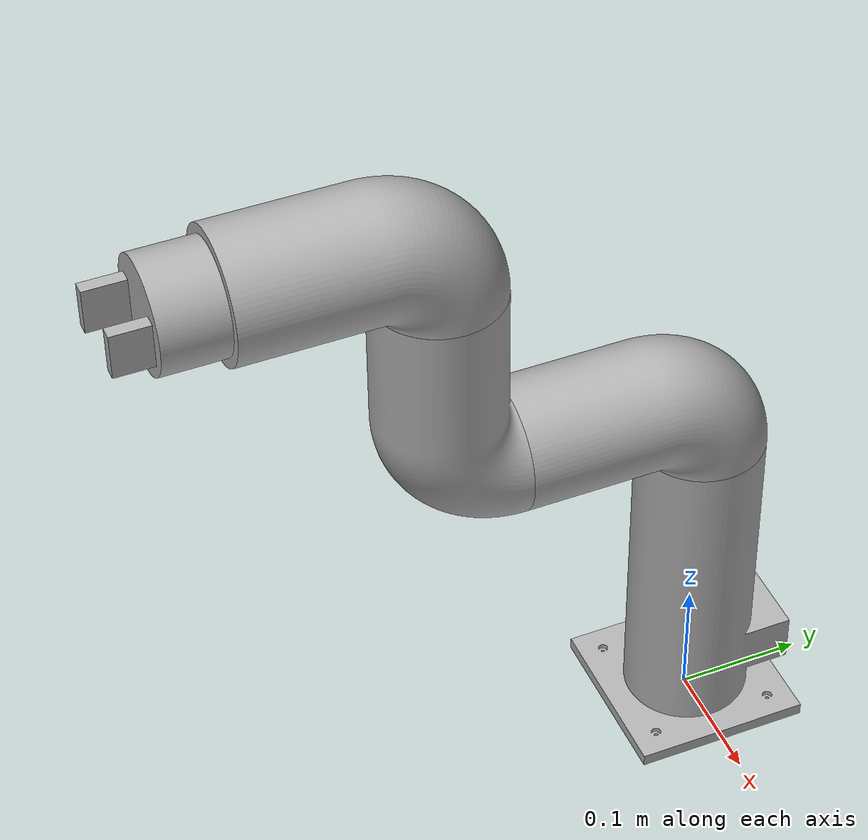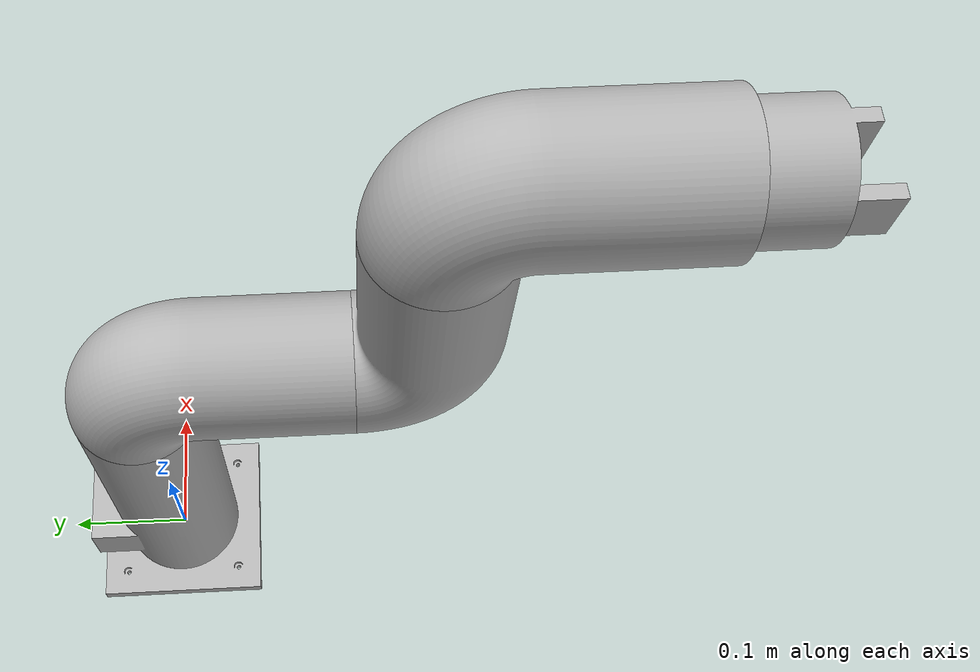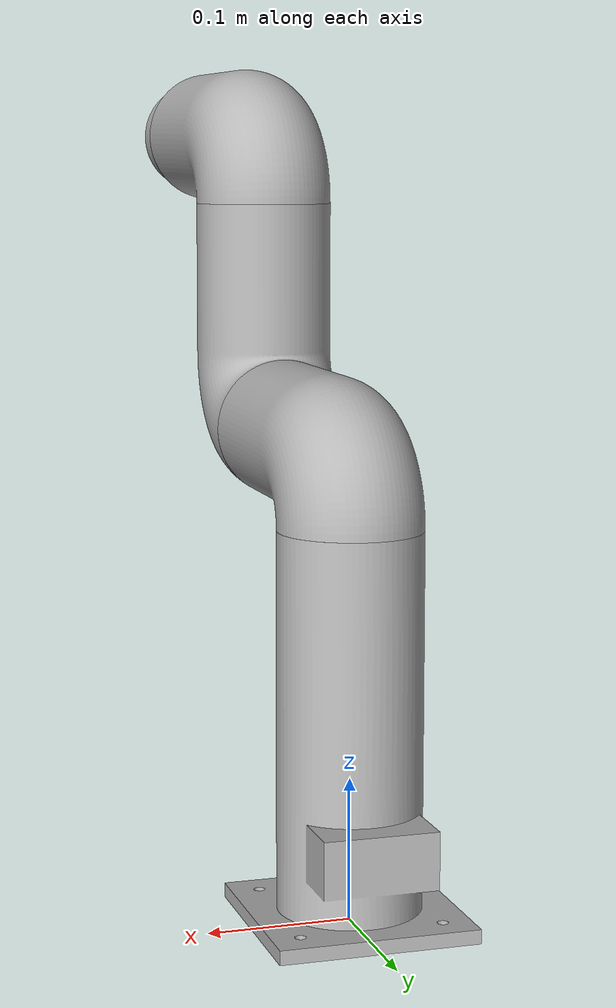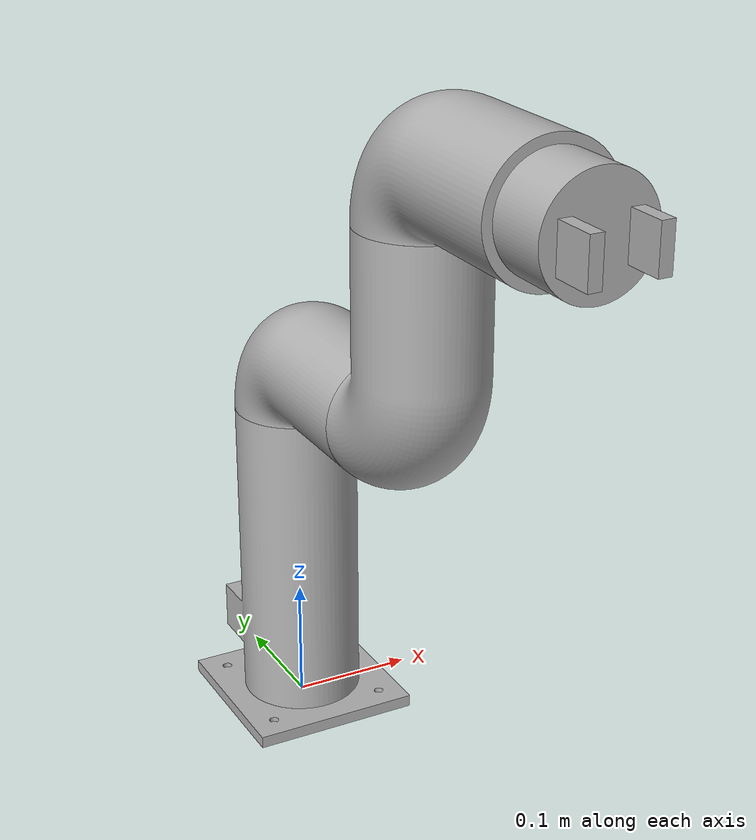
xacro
<?xml version="1.0" ?>
<robot name="ARM_MK1" xmlns:xacro="http://www.ros.org/wiki/xacro">

<xacro:include filename="$(find ARM_MK1_description)/urdf/materials.xacro" />
<xacro:include filename="$(find ARM_MK1_description)/urdf/ARM_MK1.ros2control" />
<xacro:include filename="$(find ARM_MK1_description)/urdf/ARM_MK1.gazebo" />

<link name="world"/>

<joint name="world_to_base" type="fixed">
  <parent link="world"/>
  <child link="base_link"/>
  <origin xyz="0 0 0" rpy="0 0 0"/>
</joint>

<link name="base_link">
  <inertial>
    <origin xyz="-2.5146951664307407e-16 0.0020276201555886513 0.12544118147862734" rpy="0 0 0"/>
    <mass value="18.170398713545378"/>
    <inertia ixx="0.132447" iyy="0.130813" izz="0.027455" ixy="-0.0" iyz="0.002411" ixz="-0.0"/>
  </inertial>
  <visual>
    <origin xyz="0 0 0" rpy="0 0 0"/>
    <geometry>
      <mesh filename="file://$(find ARM_MK1_description)/meshes/base_link.stl" scale="0.001 0.001 0.001"/>
    </geometry>
    <material name="silver"/>
  </visual>
  <collision>
    <origin xyz="0 0 0" rpy="0 0 0"/>
    <geometry>
      <mesh filename="file://$(find ARM_MK1_description)/meshes/base_link.stl" scale="0.001 0.001 0.001"/>
    </geometry>
  </collision>
</link>

<link name="joint_1_1">
  <inertial>
    <origin xyz="6.141963195453391e-18 -0.06323784729884264 0.04800675125648196" rpy="0 0 0"/>
    <mass value="11.624187872376945"/>
    <inertia ixx="0.042184" iyy="0.014994" izz="0.041721" ixy="0.0" iyz="0.004088" ixz="-0.0"/>
  </inertial>
  <visual>
    <origin xyz="-0.0 -0.0 -0.269" rpy="0 0 0"/>
    <geometry>
      <mesh filename="file://$(find ARM_MK1_description)/meshes/joint_1_1.stl" scale="0.001 0.001 0.001"/>
    </geometry>
    <material name="silver"/>
  </visual>
  <collision>
    <origin xyz="-0.0 -0.0 -0.269" rpy="0 0 0"/>
    <geometry>
      <mesh filename="file://$(find ARM_MK1_description)/meshes/joint_1_1.stl" scale="0.001 0.001 0.001"/>
    </geometry>
  </collision>
</link>

<link name="joint_2_1">
  <inertial>
    <origin xyz="-1.1984387041508612e-17 -0.05017380321125389 0.06427407434462423" rpy="0 0 0"/>
    <mass value="11.914724356263322"/>
    <inertia ixx="0.044691" iyy="0.043905" izz="0.01568" ixy="0.0" iyz="0.004833" ixz="-0.0"/>
  </inertial>
  <visual>
    <origin xyz="-0.0 0.157 -0.322" rpy="0 0 0"/>
    <geometry>
      <mesh filename="file://$(find ARM_MK1_description)/meshes/joint_2_1.stl" scale="0.001 0.001 0.001"/>
    </geometry>
    <material name="silver"/>
  </visual>
  <collision>
    <origin xyz="-0.0 0.157 -0.322" rpy="0 0 0"/>
    <geometry>
      <mesh filename="file://$(find ARM_MK1_description)/meshes/joint_2_1.stl" scale="0.001 0.001 0.001"/>
    </geometry>
  </collision>
</link>

<link name="joint_3_1">
  <inertial>
    <origin xyz="-4.238507758075258e-17 -0.06458648147022808 0.048077443759213634" rpy="0 0 0"/>
    <mass value="11.79111534412222"/>
    <inertia ixx="0.043776" iyy="0.015186" izz="0.043308" ixy="-0.0" iyz="0.004166" ixz="0.0"/>
  </inertial>
  <visual>
    <origin xyz="0.0 0.213 -0.482" rpy="0 0 0"/>
    <geometry>
      <mesh filename="file://$(find ARM_MK1_description)/meshes/joint_3_1.stl" scale="0.001 0.001 0.001"/>
    </geometry>
    <material name="silver"/>
  </visual>
  <collision>
    <origin xyz="0.0 0.213 -0.482" rpy="0 0 0"/>
    <geometry>
      <mesh filename="file://$(find ARM_MK1_description)/meshes/joint_3_1.stl" scale="0.001 0.001 0.001"/>
    </geometry>
  </collision>
</link>

<link name="joint_4_1">
  <inertial>
    <origin xyz="0.0008921740939843348 -0.026427480830252592 -8.921036574205399e-05" rpy="0 0 0"/>
    <mass value="2.309666929239527"/>
    <inertia ixx="0.001612" iyy="0.002071" izz="0.001653" ixy="7.9e-05" iyz="-8e-06" ixz="5e-06"/>
  </inertial>
  <visual>
    <origin xyz="0.0 0.373 -0.535" rpy="0 0 0"/>
    <geometry>
      <mesh filename="file://$(find ARM_MK1_description)/meshes/joint_4_1.stl" scale="0.001 0.001 0.001"/>
    </geometry>
    <material name="silver"/>
  </visual>
  <collision>
    <origin xyz="0.0 0.373 -0.535" rpy="0 0 0"/>
    <geometry>
      <mesh filename="file://$(find ARM_MK1_description)/meshes/joint_4_1.stl" scale="0.001 0.001 0.001"/>
    </geometry>
  </collision>
</link>

<link name="grip_1_1">
  <inertial>
    <origin xyz="-0.02000000000000005 -2.279877564514976e-09 7.450529082575486e-11" rpy="0 0 0"/>
    <mass value="0.0961625"/>
    <inertia ixx="2e-05" iyy="1.1e-05" izz="1.1e-05" ixy="0.0" iyz="0.0" ixz="-0.0"/>
  </inertial>
  <visual>
    <origin xyz="-0.02 0.438 -0.5325" rpy="0 0 0"/>
    <geometry>
      <mesh filename="file://$(find ARM_MK1_description)/meshes/grip_1_1.stl" scale="0.001 0.001 0.001"/>
    </geometry>
    <material name="silver"/>
  </visual>
  <collision>
    <origin xyz="-0.02 0.438 -0.5325" rpy="0 0 0"/>
    <geometry>
      <mesh filename="file://$(find ARM_MK1_description)/meshes/grip_1_1.stl" scale="0.001 0.001 0.001"/>
    </geometry>
  </collision>
</link>

<joint name="Revolute 1" type="continuous">
  <origin xyz="0.0 0.0 0.269" rpy="0 0 0"/>
  <parent link="base_link"/>
  <child link="joint_1_1"/>
  <axis xyz="0.0 0.0 1.0"/>
</joint>

<joint name="Revolute 2" type="continuous">
  <origin xyz="0.0 -0.157 0.053" rpy="0 0 0"/>
  <parent link="joint_1_1"/>
  <child link="joint_2_1"/>
  <axis xyz="0.0 -1.0 0.0"/>
</joint>

<joint name="Revolute 3" type="continuous">
  <origin xyz="-0.0 -0.056 0.16" rpy="0 0 0"/>
  <parent link="joint_2_1"/>
  <child link="joint_3_1"/>
  <axis xyz="-0.0 0.0 1.0"/>
</joint>

<joint name="Revolute 4" type="continuous">
  <origin xyz="0.0 -0.16 0.053" rpy="0 0 0"/>
  <parent link="joint_3_1"/>
  <child link="joint_4_1"/>
  <axis xyz="0.0 -1.0 0.0"/>
</joint>

<joint name="Slider 5" type="prismatic">
  <origin xyz="0.02 -0.065 -0.0025" rpy="0 0 0"/>
  <parent link="joint_4_1"/>
  <child link="grip_1_1"/>
  <axis xyz="-1.0 0.0 0.0"/>
  <limit upper="0.035" lower="0.015" effort="100" velocity="100"/>
</joint>

</robot>

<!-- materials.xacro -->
<robot name="ARM_MK1" xmlns:xacro="http://www.ros.org/wiki/xacro" >

<material name="silver">
  <color rgba="0.700 0.700 0.700 1.000"/>
</material>

</robot>

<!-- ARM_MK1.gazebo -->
<robot name="ARM_MK1" xmlns:xacro="http://www.ros.org/wiki/xacro" >

<xacro:property name="body_color" value="Gazebo/Silver" />

<gazebo reference="base_link">
  <material>${body_color}</material>
  <mu1>0.2</mu1>
  <mu2>0.2</mu2>
  <self_collide>true</self_collide>
  <gravity>true</gravity>
</gazebo>

<gazebo reference="joint_1_1">
  <material>${body_color}</material>
  <mu1>0.2</mu1>
  <mu2>0.2</mu2>
  <self_collide>true</self_collide>
</gazebo>

<gazebo reference="joint_2_1">
  <material>${body_color}</material>
  <mu1>0.2</mu1>
  <mu2>0.2</mu2>
  <self_collide>true</self_collide>
</gazebo>

<gazebo reference="joint_3_1">
  <material>${body_color}</material>
  <mu1>0.2</mu1>
  <mu2>0.2</mu2>
  <self_collide>true</self_collide>
</gazebo>

<gazebo reference="joint_4_1">
  <material>${body_color}</material>
  <mu1>0.2</mu1>
  <mu2>0.2</mu2>
  <self_collide>true</self_collide>
</gazebo>

<gazebo reference="grip_1_1">
  <material>${body_color}</material>
  <mu1>0.2</mu1>
  <mu2>0.2</mu2>
  <self_collide>true</self_collide>
</gazebo>

<gazebo>
    <plugin filename="gz-sim-joint-state-publisher-system" name="gz::sim::systems::JointStatePublisher">
    <topic>/joint_states</topic>
    </plugin>

    <plugin filename="gz_ros2_control-system" name="gz_ros2_control::GazeboSimROS2ControlPlugin">
    <parameters>$(find ARM_MK1_description)/config/controller.yaml</parameters>
    </plugin>

</gazebo>

</robot>
